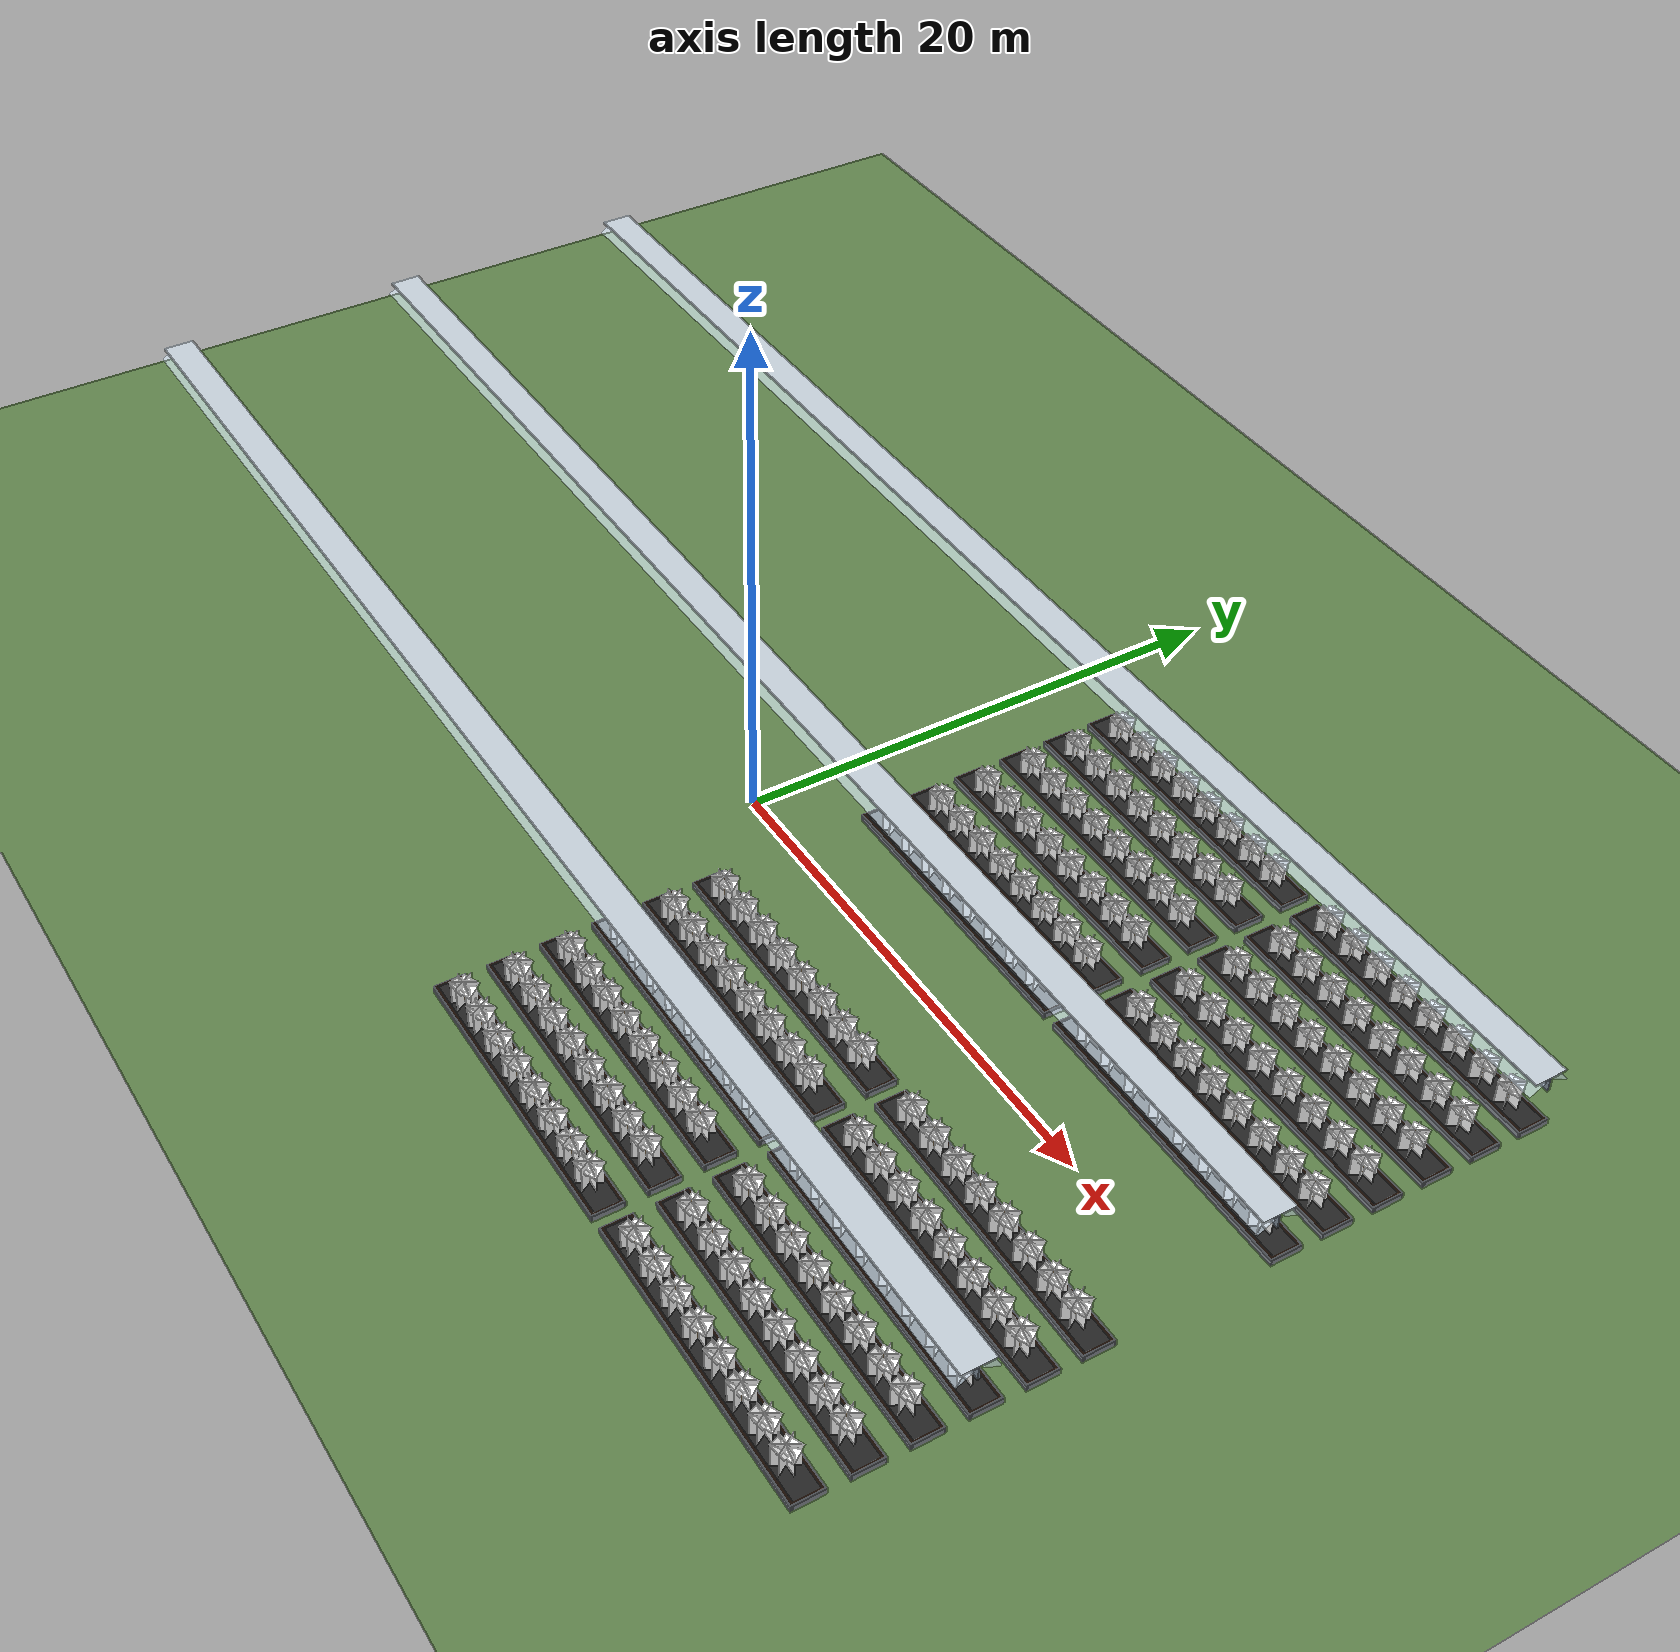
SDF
<sdf version="1.9">
 <world name="polyhouse_world">
  <model name="ground_plane">
   <static>true</static>
   <link name="ground_link">
    <collision name="ground_collision">
     <geometry><plane><normal>0 0 1</normal><size>150 150</size></plane></geometry>
    </collision>
    <visual name="ground_visual">
     <geometry><plane><normal>0 0 1</normal><size>150 150</size></plane></geometry>
     <material>
      <ambient>0.32 0.45 0.25 1</ambient>
      <diffuse>0.38 0.52 0.3 1</diffuse>
      <roughness>0.9</roughness>
     </material>
    </visual>
    <visual name="polyhouse_floor">
     <pose>0 0 0.005 0 0 0</pose>
     <geometry><box><size>60.2 30.2 0.01</size></box></geometry>
     <material>
      <ambient>0.28 0.22 0.18 1</ambient>
      <diffuse>0.34 0.27 0.22 1</diffuse>
      <roughness>0.95</roughness>
     </material>
    </visual>
    <visual name="main_walkway_longitudinal">
     <pose>0 0 0.015 0 0 0</pose>
     <geometry><box><size>60.0 3.0 0.02</size></box></geometry>
     <material>
      <ambient>0.62 0.64 0.65 1</ambient>
      <diffuse>0.72 0.74 0.75 1</diffuse>
      <roughness>0.7</roughness>
     </material>
    </visual>
    <visual name="main_walkway_transverse">
     <pose>0 0 0.016 0 0 0</pose>
     <geometry><box><size>3.0 30.0 0.02</size></box></geometry>
     <material>
      <ambient>0.62 0.64 0.65 1</ambient>
      <diffuse>0.72 0.74 0.75 1</diffuse>
      <roughness>0.7</roughness>
     </material>
    </visual>
   </link>
  </model>
  <include><uri>model://rooftop_ventilation</uri><name>polyhouse_ventilation_system</name></include>
  <include><uri>model://crop_bed</uri><name>capsicum_bed_001</name><pose>8.5 3.5 0 0 0 0</pose></include>
  <include>
   <uri>model://capsicum_plant</uri>
   <name>capsicum_bed_001_p01</name>
   <pose>4.00 3.5 0.25 0 0 0</pose>
  </include>
  <include>
   <uri>model://capsicum_plant</uri>
   <name>capsicum_bed_001_p02</name>
   <pose>5.30 3.5 0.25 0 0 0</pose>
  </include>
  <include>
   <uri>model://capsicum_plant</uri>
   <name>capsicum_bed_001_p03</name>
   <pose>6.60 3.5 0.25 0 0 0</pose>
  </include>
  <include>
   <uri>model://capsicum_plant</uri>
   <name>capsicum_bed_001_p04</name>
   <pose>7.90 3.5 0.25 0 0 0</pose>
  </include>
  <include>
   <uri>model://capsicum_plant</uri>
   <name>capsicum_bed_001_p05</name>
   <pose>9.20 3.5 0.25 0 0 0</pose>
  </include>
  <include>
   <uri>model://capsicum_plant</uri>
   <name>capsicum_bed_001_p06</name>
   <pose>10.50 3.5 0.25 0 0 0</pose>
  </include>
  <include>
   <uri>model://capsicum_plant</uri>
   <name>capsicum_bed_001_p07</name>
   <pose>11.80 3.5 0.25 0 0 0</pose>
  </include>
  <include>
   <uri>model://capsicum_plant</uri>
   <name>capsicum_bed_001_p08</name>
   <pose>13.00 3.5 0.25 0 0 0</pose>
  </include>
  <include><uri>model://crop_bed</uri><name>capsicum_bed_002</name><pose>20.5 3.5 0 0 0 0</pose></include>
  <include>
   <uri>model://capsicum_plant</uri>
   <name>capsicum_bed_002_p01</name>
   <pose>16.00 3.5 0.25 0 0 0</pose>
  </include>
  <include>
   <uri>model://capsicum_plant</uri>
   <name>capsicum_bed_002_p02</name>
   <pose>17.30 3.5 0.25 0 0 0</pose>
  </include>
  <include>
   <uri>model://capsicum_plant</uri>
   <name>capsicum_bed_002_p03</name>
   <pose>18.60 3.5 0.25 0 0 0</pose>
  </include>
  <include>
   <uri>model://capsicum_plant</uri>
   <name>capsicum_bed_002_p04</name>
   <pose>19.90 3.5 0.25 0 0 0</pose>
  </include>
  <include>
   <uri>model://capsicum_plant</uri>
   <name>capsicum_bed_002_p05</name>
   <pose>21.20 3.5 0.25 0 0 0</pose>
  </include>
  <include>
   <uri>model://capsicum_plant</uri>
   <name>capsicum_bed_002_p06</name>
   <pose>22.50 3.5 0.25 0 0 0</pose>
  </include>
  <include>
   <uri>model://capsicum_plant</uri>
   <name>capsicum_bed_002_p07</name>
   <pose>23.80 3.5 0.25 0 0 0</pose>
  </include>
  <include>
   <uri>model://capsicum_plant</uri>
   <name>capsicum_bed_002_p08</name>
   <pose>25.00 3.5 0.25 0 0 0</pose>
  </include>
  <include><uri>model://crop_bed</uri><name>capsicum_bed_003</name><pose>8.5 5.5 0 0 0 0</pose></include>
  <include>
   <uri>model://capsicum_plant</uri>
   <name>capsicum_bed_003_p01</name>
   <pose>4.00 5.5 0.25 0 0 0</pose>
  </include>
  <include>
   <uri>model://capsicum_plant</uri>
   <name>capsicum_bed_003_p02</name>
   <pose>5.30 5.5 0.25 0 0 0</pose>
  </include>
  <include>
   <uri>model://capsicum_plant</uri>
   <name>capsicum_bed_003_p03</name>
   <pose>6.60 5.5 0.25 0 0 0</pose>
  </include>
  <include>
   <uri>model://capsicum_plant</uri>
   <name>capsicum_bed_003_p04</name>
   <pose>7.90 5.5 0.25 0 0 0</pose>
  </include>
  <include>
   <uri>model://capsicum_plant</uri>
   <name>capsicum_bed_003_p05</name>
   <pose>9.20 5.5 0.25 0 0 0</pose>
  </include>
  <include>
   <uri>model://capsicum_plant</uri>
   <name>capsicum_bed_003_p06</name>
   <pose>10.50 5.5 0.25 0 0 0</pose>
  </include>
  <include>
   <uri>model://capsicum_plant</uri>
   <name>capsicum_bed_003_p07</name>
   <pose>11.80 5.5 0.25 0 0 0</pose>
  </include>
  <include>
   <uri>model://capsicum_plant</uri>
   <name>capsicum_bed_003_p08</name>
   <pose>13.00 5.5 0.25 0 0 0</pose>
  </include>
  <include><uri>model://crop_bed</uri><name>capsicum_bed_004</name><pose>20.5 5.5 0 0 0 0</pose></include>
  <include>
   <uri>model://capsicum_plant</uri>
   <name>capsicum_bed_004_p01</name>
   <pose>16.00 5.5 0.25 0 0 0</pose>
  </include>
  <include>
   <uri>model://capsicum_plant</uri>
   <name>capsicum_bed_004_p02</name>
   <pose>17.30 5.5 0.25 0 0 0</pose>
  </include>
  <include>
   <uri>model://capsicum_plant</uri>
   <name>capsicum_bed_004_p03</name>
   <pose>18.60 5.5 0.25 0 0 0</pose>
  </include>
  <include>
   <uri>model://capsicum_plant</uri>
   <name>capsicum_bed_004_p04</name>
   <pose>19.90 5.5 0.25 0 0 0</pose>
  </include>
  <include>
   <uri>model://capsicum_plant</uri>
   <name>capsicum_bed_004_p05</name>
   <pose>21.20 5.5 0.25 0 0 0</pose>
  </include>
  <include>
   <uri>model://capsicum_plant</uri>
   <name>capsicum_bed_004_p06</name>
   <pose>22.50 5.5 0.25 0 0 0</pose>
  </include>
  <include>
   <uri>model://capsicum_plant</uri>
   <name>capsicum_bed_004_p07</name>
   <pose>23.80 5.5 0.25 0 0 0</pose>
  </include>
  <include>
   <uri>model://capsicum_plant</uri>
   <name>capsicum_bed_004_p08</name>
   <pose>25.00 5.5 0.25 0 0 0</pose>
  </include>
  <include><uri>model://crop_bed</uri><name>capsicum_bed_005</name><pose>8.5 7.5 0 0 0 0</pose></include>
  <include>
   <uri>model://capsicum_plant</uri>
   <name>capsicum_bed_005_p01</name>
   <pose>4.00 7.5 0.25 0 0 0</pose>
  </include>
  <include>
   <uri>model://capsicum_plant</uri>
   <name>capsicum_bed_005_p02</name>
   <pose>5.30 7.5 0.25 0 0 0</pose>
  </include>
  <include>
   <uri>model://capsicum_plant</uri>
   <name>capsicum_bed_005_p03</name>
   <pose>6.60 7.5 0.25 0 0 0</pose>
  </include>
  <include>
   <uri>model://capsicum_plant</uri>
   <name>capsicum_bed_005_p04</name>
   <pose>7.90 7.5 0.25 0 0 0</pose>
  </include>
  <include>
   <uri>model://capsicum_plant</uri>
   <name>capsicum_bed_005_p05</name>
   <pose>9.20 7.5 0.25 0 0 0</pose>
  </include>
  <include>
   <uri>model://capsicum_plant</uri>
   <name>capsicum_bed_005_p06</name>
   <pose>10.50 7.5 0.25 0 0 0</pose>
  </include>
  <include>
   <uri>model://capsicum_plant</uri>
   <name>capsicum_bed_005_p07</name>
   <pose>11.80 7.5 0.25 0 0 0</pose>
  </include>
  <include>
   <uri>model://capsicum_plant</uri>
   <name>capsicum_bed_005_p08</name>
   <pose>13.00 7.5 0.25 0 0 0</pose>
  </include>
  <include><uri>model://crop_bed</uri><name>capsicum_bed_006</name><pose>20.5 7.5 0 0 0 0</pose></include>
  <include>
   <uri>model://capsicum_plant</uri>
   <name>capsicum_bed_006_p01</name>
   <pose>16.00 7.5 0.25 0 0 0</pose>
  </include>
  <include>
   <uri>model://capsicum_plant</uri>
   <name>capsicum_bed_006_p02</name>
   <pose>17.30 7.5 0.25 0 0 0</pose>
  </include>
  <include>
   <uri>model://capsicum_plant</uri>
   <name>capsicum_bed_006_p03</name>
   <pose>18.60 7.5 0.25 0 0 0</pose>
  </include>
  <include>
   <uri>model://capsicum_plant</uri>
   <name>capsicum_bed_006_p04</name>
   <pose>19.90 7.5 0.25 0 0 0</pose>
  </include>
  <include>
   <uri>model://capsicum_plant</uri>
   <name>capsicum_bed_006_p05</name>
   <pose>21.20 7.5 0.25 0 0 0</pose>
  </include>
  <include>
   <uri>model://capsicum_plant</uri>
   <name>capsicum_bed_006_p06</name>
   <pose>22.50 7.5 0.25 0 0 0</pose>
  </include>
  <include>
   <uri>model://capsicum_plant</uri>
   <name>capsicum_bed_006_p07</name>
   <pose>23.80 7.5 0.25 0 0 0</pose>
  </include>
  <include>
   <uri>model://capsicum_plant</uri>
   <name>capsicum_bed_006_p08</name>
   <pose>25.00 7.5 0.25 0 0 0</pose>
  </include>
  <include><uri>model://crop_bed</uri><name>capsicum_bed_007</name><pose>8.5 9.5 0 0 0 0</pose></include>
  <include>
   <uri>model://capsicum_plant</uri>
   <name>capsicum_bed_007_p01</name>
   <pose>4.00 9.5 0.25 0 0 0</pose>
  </include>
  <include>
   <uri>model://capsicum_plant</uri>
   <name>capsicum_bed_007_p02</name>
   <pose>5.30 9.5 0.25 0 0 0</pose>
  </include>
  <include>
   <uri>model://capsicum_plant</uri>
   <name>capsicum_bed_007_p03</name>
   <pose>6.60 9.5 0.25 0 0 0</pose>
  </include>
  <include>
   <uri>model://capsicum_plant</uri>
   <name>capsicum_bed_007_p04</name>
   <pose>7.90 9.5 0.25 0 0 0</pose>
  </include>
  <include>
   <uri>model://capsicum_plant</uri>
   <name>capsicum_bed_007_p05</name>
   <pose>9.20 9.5 0.25 0 0 0</pose>
  </include>
  <include>
   <uri>model://capsicum_plant</uri>
   <name>capsicum_bed_007_p06</name>
   <pose>10.50 9.5 0.25 0 0 0</pose>
  </include>
  <include>
   <uri>model://capsicum_plant</uri>
   <name>capsicum_bed_007_p07</name>
   <pose>11.80 9.5 0.25 0 0 0</pose>
  </include>
  <include>
   <uri>model://capsicum_plant</uri>
   <name>capsicum_bed_007_p08</name>
   <pose>13.00 9.5 0.25 0 0 0</pose>
  </include>
  <include><uri>model://crop_bed</uri><name>capsicum_bed_008</name><pose>20.5 9.5 0 0 0 0</pose></include>
  <include>
   <uri>model://capsicum_plant</uri>
   <name>capsicum_bed_008_p01</name>
   <pose>16.00 9.5 0.25 0 0 0</pose>
  </include>
  <include>
   <uri>model://capsicum_plant</uri>
   <name>capsicum_bed_008_p02</name>
   <pose>17.30 9.5 0.25 0 0 0</pose>
  </include>
  <include>
   <uri>model://capsicum_plant</uri>
   <name>capsicum_bed_008_p03</name>
   <pose>18.60 9.5 0.25 0 0 0</pose>
  </include>
  <include>
   <uri>model://capsicum_plant</uri>
   <name>capsicum_bed_008_p04</name>
   <pose>19.90 9.5 0.25 0 0 0</pose>
  </include>
  <include>
   <uri>model://capsicum_plant</uri>
   <name>capsicum_bed_008_p05</name>
   <pose>21.20 9.5 0.25 0 0 0</pose>
  </include>
  <include>
   <uri>model://capsicum_plant</uri>
   <name>capsicum_bed_008_p06</name>
   <pose>22.50 9.5 0.25 0 0 0</pose>
  </include>
  <include>
   <uri>model://capsicum_plant</uri>
   <name>capsicum_bed_008_p07</name>
   <pose>23.80 9.5 0.25 0 0 0</pose>
  </include>
  <include>
   <uri>model://capsicum_plant</uri>
   <name>capsicum_bed_008_p08</name>
   <pose>25.00 9.5 0.25 0 0 0</pose>
  </include>
  <include><uri>model://crop_bed</uri><name>capsicum_bed_009</name><pose>8.5 11.5 0 0 0 0</pose></include>
  <include>
   <uri>model://capsicum_plant</uri>
   <name>capsicum_bed_009_p01</name>
   <pose>4.00 11.5 0.25 0 0 0</pose>
  </include>
  <include>
   <uri>model://capsicum_plant</uri>
   <name>capsicum_bed_009_p02</name>
   <pose>5.30 11.5 0.25 0 0 0</pose>
  </include>
  <include>
   <uri>model://capsicum_plant</uri>
   <name>capsicum_bed_009_p03</name>
   <pose>6.60 11.5 0.25 0 0 0</pose>
  </include>
  <include>
   <uri>model://capsicum_plant</uri>
   <name>capsicum_bed_009_p04</name>
   <pose>7.90 11.5 0.25 0 0 0</pose>
  </include>
  <include>
   <uri>model://capsicum_plant</uri>
   <name>capsicum_bed_009_p05</name>
   <pose>9.20 11.5 0.25 0 0 0</pose>
  </include>
  <include>
   <uri>model://capsicum_plant</uri>
   <name>capsicum_bed_009_p06</name>
   <pose>10.50 11.5 0.25 0 0 0</pose>
  </include>
  <include>
   <uri>model://capsicum_plant</uri>
   <name>capsicum_bed_009_p07</name>
   <pose>11.80 11.5 0.25 0 0 0</pose>
  </include>
  <include>
   <uri>model://capsicum_plant</uri>
   <name>capsicum_bed_009_p08</name>
   <pose>13.00 11.5 0.25 0 0 0</pose>
  </include>
  <include><uri>model://crop_bed</uri><name>capsicum_bed_010</name><pose>20.5 11.5 0 0 0 0</pose></include>
  <include>
   <uri>model://capsicum_plant</uri>
   <name>capsicum_bed_010_p01</name>
   <pose>16.00 11.5 0.25 0 0 0</pose>
  </include>
  <include>
   <uri>model://capsicum_plant</uri>
   <name>capsicum_bed_010_p02</name>
   <pose>17.30 11.5 0.25 0 0 0</pose>
  </include>
  <include>
   <uri>model://capsicum_plant</uri>
   <name>capsicum_bed_010_p03</name>
   <pose>18.60 11.5 0.25 0 0 0</pose>
  </include>
  <include>
   <uri>model://capsicum_plant</uri>
   <name>capsicum_bed_010_p04</name>
   <pose>19.90 11.5 0.25 0 0 0</pose>
  </include>
  <include>
   <uri>model://capsicum_plant</uri>
   <name>capsicum_bed_010_p05</name>
   <pose>21.20 11.5 0.25 0 0 0</pose>
  </include>
  <include>
   <uri>model://capsicum_plant</uri>
   <name>capsicum_bed_010_p06</name>
   <pose>22.50 11.5 0.25 0 0 0</pose>
  </include>
  <include>
   <uri>model://capsicum_plant</uri>
   <name>capsicum_bed_010_p07</name>
   <pose>23.80 11.5 0.25 0 0 0</pose>
  </include>
  <include>
   <uri>model://capsicum_plant</uri>
   <name>capsicum_bed_010_p08</name>
   <pose>25.00 11.5 0.25 0 0 0</pose>
  </include>
  <include><uri>model://crop_bed</uri><name>capsicum_bed_011</name><pose>8.5 13.5 0 0 0 0</pose></include>
  <include>
   <uri>model://capsicum_plant</uri>
   <name>capsicum_bed_011_p01</name>
   <pose>4.00 13.5 0.25 0 0 0</pose>
  </include>
  <include>
   <uri>model://capsicum_plant</uri>
   <name>capsicum_bed_011_p02</name>
   <pose>5.30 13.5 0.25 0 0 0</pose>
  </include>
  <include>
   <uri>model://capsicum_plant</uri>
   <name>capsicum_bed_011_p03</name>
   <pose>6.60 13.5 0.25 0 0 0</pose>
  </include>
  <include>
   <uri>model://capsicum_plant</uri>
   <name>capsicum_bed_011_p04</name>
   <pose>7.90 13.5 0.25 0 0 0</pose>
  </include>
  <include>
   <uri>model://capsicum_plant</uri>
   <name>capsicum_bed_011_p05</name>
   <pose>9.20 13.5 0.25 0 0 0</pose>
  </include>
  <include>
   <uri>model://capsicum_plant</uri>
   <name>capsicum_bed_011_p06</name>
   <pose>10.50 13.5 0.25 0 0 0</pose>
  </include>
  <include>
   <uri>model://capsicum_plant</uri>
   <name>capsicum_bed_011_p07</name>
   <pose>11.80 13.5 0.25 0 0 0</pose>
  </include>
  <include>
   <uri>model://capsicum_plant</uri>
   <name>capsicum_bed_011_p08</name>
   <pose>13.00 13.5 0.25 0 0 0</pose>
  </include>
  <include><uri>model://crop_bed</uri><name>capsicum_bed_012</name><pose>20.5 13.5 0 0 0 0</pose></include>
  <include>
   <uri>model://capsicum_plant</uri>
   <name>capsicum_bed_012_p01</name>
   <pose>16.00 13.5 0.25 0 0 0</pose>
  </include>
  <include>
   <uri>model://capsicum_plant</uri>
   <name>capsicum_bed_012_p02</name>
   <pose>17.30 13.5 0.25 0 0 0</pose>
  </include>
  <include>
   <uri>model://capsicum_plant</uri>
   <name>capsicum_bed_012_p03</name>
   <pose>18.60 13.5 0.25 0 0 0</pose>
  </include>
  <include>
   <uri>model://capsicum_plant</uri>
   <name>capsicum_bed_012_p04</name>
   <pose>19.90 13.5 0.25 0 0 0</pose>
  </include>
  <include>
   <uri>model://capsicum_plant</uri>
   <name>capsicum_bed_012_p05</name>
   <pose>21.20 13.5 0.25 0 0 0</pose>
  </include>
  <include>
   <uri>model://capsicum_plant</uri>
   <name>capsicum_bed_012_p06</name>
   <pose>22.50 13.5 0.25 0 0 0</pose>
  </include>
  <include>
   <uri>model://capsicum_plant</uri>
   <name>capsicum_bed_012_p07</name>
   <pose>23.80 13.5 0.25 0 0 0</pose>
  </include>
  <include>
   <uri>model://capsicum_plant</uri>
   <name>capsicum_bed_012_p08</name>
   <pose>25.00 13.5 0.25 0 0 0</pose>
  </include>
  <include><uri>model://crop_bed</uri><name>eggplant_bed_001</name><pose>8.5 -13.5 0 0 0 0</pose></include>
  <include>
   <uri>model://eggplant_plant</uri>
   <name>eggplant_bed_001_p01</name>
   <pose>4.00 -13.5 0.25 0 0 0</pose>
  </include>
  <include>
   <uri>model://eggplant_plant</uri>
   <name>eggplant_bed_001_p02</name>
   <pose>5.30 -13.5 0.25 0 0 0</pose>
  </include>
  <include>
   <uri>model://eggplant_plant</uri>
   <name>eggplant_bed_001_p03</name>
   <pose>6.60 -13.5 0.25 0 0 0</pose>
  </include>
  <include>
   <uri>model://eggplant_plant</uri>
   <name>eggplant_bed_001_p04</name>
   <pose>7.90 -13.5 0.25 0 0 0</pose>
  </include>
  <include>
   <uri>model://eggplant_plant</uri>
   <name>eggplant_bed_001_p05</name>
   <pose>9.20 -13.5 0.25 0 0 0</pose>
  </include>
  <include>
   <uri>model://eggplant_plant</uri>
   <name>eggplant_bed_001_p06</name>
   <pose>10.50 -13.5 0.25 0 0 0</pose>
  </include>
  <include>
   <uri>model://eggplant_plant</uri>
   <name>eggplant_bed_001_p07</name>
   <pose>11.80 -13.5 0.25 0 0 0</pose>
  </include>
  <include>
   <uri>model://eggplant_plant</uri>
   <name>eggplant_bed_001_p08</name>
   <pose>13.00 -13.5 0.25 0 0 0</pose>
  </include>
  <include><uri>model://crop_bed</uri><name>eggplant_bed_002</name><pose>20.5 -13.5 0 0 0 0</pose></include>
  <include>
   <uri>model://eggplant_plant</uri>
   <name>eggplant_bed_002_p01</name>
   <pose>16.00 -13.5 0.25 0 0 0</pose>
  </include>
  <include>
   <uri>model://eggplant_plant</uri>
   <name>eggplant_bed_002_p02</name>
   <pose>17.30 -13.5 0.25 0 0 0</pose>
  </include>
  <include>
   <uri>model://eggplant_plant</uri>
   <name>eggplant_bed_002_p03</name>
   <pose>18.60 -13.5 0.25 0 0 0</pose>
  </include>
  <include>
   <uri>model://eggplant_plant</uri>
   <name>eggplant_bed_002_p04</name>
   <pose>19.90 -13.5 0.25 0 0 0</pose>
  </include>
  <include>
   <uri>model://eggplant_plant</uri>
   <name>eggplant_bed_002_p05</name>
   <pose>21.20 -13.5 0.25 0 0 0</pose>
  </include>
  <include>
   <uri>model://eggplant_plant</uri>
   <name>eggplant_bed_002_p06</name>
   <pose>22.50 -13.5 0.25 0 0 0</pose>
  </include>
  <include>
   <uri>model://eggplant_plant</uri>
   <name>eggplant_bed_002_p07</name>
   <pose>23.80 -13.5 0.25 0 0 0</pose>
  </include>
  <include>
   <uri>model://eggplant_plant</uri>
   <name>eggplant_bed_002_p08</name>
   <pose>25.00 -13.5 0.25 0 0 0</pose>
  </include>
  <include><uri>model://crop_bed</uri><name>eggplant_bed_003</name><pose>8.5 -11.5 0 0 0 0</pose></include>
  <include>
   <uri>model://eggplant_plant</uri>
   <name>eggplant_bed_003_p01</name>
   <pose>4.00 -11.5 0.25 0 0 0</pose>
  </include>
  <include>
   <uri>model://eggplant_plant</uri>
   <name>eggplant_bed_003_p02</name>
   <pose>5.30 -11.5 0.25 0 0 0</pose>
  </include>
  <include>
   <uri>model://eggplant_plant</uri>
   <name>eggplant_bed_003_p03</name>
   <pose>6.60 -11.5 0.25 0 0 0</pose>
  </include>
  <include>
   <uri>model://eggplant_plant</uri>
   <name>eggplant_bed_003_p04</name>
   <pose>7.90 -11.5 0.25 0 0 0</pose>
  </include>
  <include>
   <uri>model://eggplant_plant</uri>
   <name>eggplant_bed_003_p05</name>
   <pose>9.20 -11.5 0.25 0 0 0</pose>
  </include>
  <include>
   <uri>model://eggplant_plant</uri>
   <name>eggplant_bed_003_p06</name>
   <pose>10.50 -11.5 0.25 0 0 0</pose>
  </include>
  <include>
   <uri>model://eggplant_plant</uri>
   <name>eggplant_bed_003_p07</name>
   <pose>11.80 -11.5 0.25 0 0 0</pose>
  </include>
  <include>
   <uri>model://eggplant_plant</uri>
   <name>eggplant_bed_003_p08</name>
   <pose>13.00 -11.5 0.25 0 0 0</pose>
  </include>
  <include><uri>model://crop_bed</uri><name>eggplant_bed_004</name><pose>20.5 -11.5 0 0 0 0</pose></include>
  <include>
   <uri>model://eggplant_plant</uri>
   <name>eggplant_bed_004_p01</name>
   <pose>16.00 -11.5 0.25 0 0 0</pose>
  </include>
  <include>
   <uri>model://eggplant_plant</uri>
   <name>eggplant_bed_004_p02</name>
   <pose>17.30 -11.5 0.25 0 0 0</pose>
  </include>
  <include>
   <uri>model://eggplant_plant</uri>
   <name>eggplant_bed_004_p03</name>
   <pose>18.60 -11.5 0.25 0 0 0</pose>
  </include>
  <include>
   <uri>model://eggplant_plant</uri>
   <name>eggplant_bed_004_p04</name>
   <pose>19.90 -11.5 0.25 0 0 0</pose>
  </include>
  <include>
   <uri>model://eggplant_plant</uri>
   <name>eggplant_bed_004_p05</name>
   <pose>21.20 -11.5 0.25 0 0 0</pose>
  </include>
  <include>
   <uri>model://eggplant_plant</uri>
   <name>eggplant_bed_004_p06</name>
   <pose>22.50 -11.5 0.25 0 0 0</pose>
  </include>
  <include>
   <uri>model://eggplant_plant</uri>
   <name>eggplant_bed_004_p07</name>
   <pose>23.80 -11.5 0.25 0 0 0</pose>
  </include>
  <include>
   <uri>model://eggplant_plant</uri>
   <name>eggplant_bed_004_p08</name>
   <pose>25.00 -11.5 0.25 0 0 0</pose>
  </include>
  <include><uri>model://crop_bed</uri><name>eggplant_bed_005</name><pose>8.5 -9.5 0 0 0 0</pose></include>
  <include>
   <uri>model://eggplant_plant</uri>
   <name>eggplant_bed_005_p01</name>
   <pose>4.00 -9.5 0.25 0 0 0</pose>
  </include>
  <include>
   <uri>model://eggplant_plant</uri>
   <name>eggplant_bed_005_p02</name>
   <pose>5.30 -9.5 0.25 0 0 0</pose>
  </include>
  <include>
   <uri>model://eggplant_plant</uri>
   <name>eggplant_bed_005_p03</name>
   <pose>6.60 -9.5 0.25 0 0 0</pose>
  </include>
  <include>
   <uri>model://eggplant_plant</uri>
   <name>eggplant_bed_005_p04</name>
   <pose>7.90 -9.5 0.25 0 0 0</pose>
  </include>
  <include>
   <uri>model://eggplant_plant</uri>
   <name>eggplant_bed_005_p05</name>
   <pose>9.20 -9.5 0.25 0 0 0</pose>
  </include>
  <include>
   <uri>model://eggplant_plant</uri>
   <name>eggplant_bed_005_p06</name>
   <pose>10.50 -9.5 0.25 0 0 0</pose>
  </include>
  <include>
   <uri>model://eggplant_plant</uri>
   <name>eggplant_bed_005_p07</name>
   <pose>11.80 -9.5 0.25 0 0 0</pose>
  </include>
  <include>
   <uri>model://eggplant_plant</uri>
   <name>eggplant_bed_005_p08</name>
   <pose>13.00 -9.5 0.25 0 0 0</pose>
  </include>
  <include><uri>model://crop_bed</uri><name>eggplant_bed_006</name><pose>20.5 -9.5 0 0 0 0</pose></include>
  <include>
   <uri>model://eggplant_plant</uri>
   <name>eggplant_bed_006_p01</name>
   <pose>16.00 -9.5 0.25 0 0 0</pose>
  </include>
  <include>
   <uri>model://eggplant_plant</uri>
   <name>eggplant_bed_006_p02</name>
   <pose>17.30 -9.5 0.25 0 0 0</pose>
  </include>
  <include>
   <uri>model://eggplant_plant</uri>
   <name>eggplant_bed_006_p03</name>
   <pose>18.60 -9.5 0.25 0 0 0</pose>
  </include>
  <include>
   <uri>model://eggplant_plant</uri>
   <name>eggplant_bed_006_p04</name>
   <pose>19.90 -9.5 0.25 0 0 0</pose>
  </include>
  <include>
   <uri>model://eggplant_plant</uri>
   <name>eggplant_bed_006_p05</name>
   <pose>21.20 -9.5 0.25 0 0 0</pose>
  </include>
  <include>
   <uri>model://eggplant_plant</uri>
   <name>eggplant_bed_006_p06</name>
   <pose>22.50 -9.5 0.25 0 0 0</pose>
  </include>
  <include>
   <uri>model://eggplant_plant</uri>
   <name>eggplant_bed_006_p07</name>
   <pose>23.80 -9.5 0.25 0 0 0</pose>
  </include>
  <include>
   <uri>model://eggplant_plant</uri>
   <name>eggplant_bed_006_p08</name>
   <pose>25.00 -9.5 0.25 0 0 0</pose>
  </include>
  <include><uri>model://crop_bed</uri><name>eggplant_bed_007</name><pose>8.5 -7.5 0 0 0 0</pose></include>
  <include>
   <uri>model://eggplant_plant</uri>
   <name>eggplant_bed_007_p01</name>
   <pose>4.00 -7.5 0.25 0 0 0</pose>
  </include>
  <include>
   <uri>model://eggplant_plant</uri>
   <name>eggplant_bed_007_p02</name>
   <pose>5.30 -7.5 0.25 0 0 0</pose>
  </include>
  <include>
   <uri>model://eggplant_plant</uri>
   <name>eggplant_bed_007_p03</name>
   <pose>6.60 -7.5 0.25 0 0 0</pose>
  </include>
  <include>
   <uri>model://eggplant_plant</uri>
   <name>eggplant_bed_007_p04</name>
   <pose>7.90 -7.5 0.25 0 0 0</pose>
  </include>
  <include>
   <uri>model://eggplant_plant</uri>
   <name>eggplant_bed_007_p05</name>
   <pose>9.20 -7.5 0.25 0 0 0</pose>
  </include>
  <include>
   <uri>model://eggplant_plant</uri>
   <name>eggplant_bed_007_p06</name>
   <pose>10.50 -7.5 0.25 0 0 0</pose>
  </include>
  <include>
   <uri>model://eggplant_plant</uri>
   <name>eggplant_bed_007_p07</name>
   <pose>11.80 -7.5 0.25 0 0 0</pose>
  </include>
  <include>
   <uri>model://eggplant_plant</uri>
   <name>eggplant_bed_007_p08</name>
   <pose>13.00 -7.5 0.25 0 0 0</pose>
  </include>
  <include><uri>model://crop_bed</uri><name>eggplant_bed_008</name><pose>20.5 -7.5 0 0 0 0</pose></include>
  <include>
   <uri>model://eggplant_plant</uri>
   <name>eggplant_bed_008_p01</name>
   <pose>16.00 -7.5 0.25 0 0 0</pose>
  </include>
  <include>
   <uri>model://eggplant_plant</uri>
   <name>eggplant_bed_008_p02</name>
   <pose>17.30 -7.5 0.25 0 0 0</pose>
  </include>
  <include>
   <uri>model://eggplant_plant</uri>
   <name>eggplant_bed_008_p03</name>
   <pose>18.60 -7.5 0.25 0 0 0</pose>
  </include>
  <include>
   <uri>model://eggplant_plant</uri>
   <name>eggplant_bed_008_p04</name>
   <pose>19.90 -7.5 0.25 0 0 0</pose>
  </include>
  <include>
   <uri>model://eggplant_plant</uri>
   <name>eggplant_bed_008_p05</name>
   <pose>21.20 -7.5 0.25 0 0 0</pose>
  </include>
  <include>
   <uri>model://eggplant_plant</uri>
   <name>eggplant_bed_008_p06</name>
   <pose>22.50 -7.5 0.25 0 0 0</pose>
  </include>
  <include>
   <uri>model://eggplant_plant</uri>
   <name>eggplant_bed_008_p07</name>
   <pose>23.80 -7.5 0.25 0 0 0</pose>
  </include>
  <include>
   <uri>model://eggplant_plant</uri>
   <name>eggplant_bed_008_p08</name>
   <pose>25.00 -7.5 0.25 0 0 0</pose>
  </include>
  <include><uri>model://crop_bed</uri><name>eggplant_bed_009</name><pose>8.5 -5.5 0 0 0 0</pose></include>
  <include>
   <uri>model://eggplant_plant</uri>
   <name>eggplant_bed_009_p01</name>
   <pose>4.00 -5.5 0.25 0 0 0</pose>
  </include>
  <include>
   <uri>model://eggplant_plant</uri>
   <name>eggplant_bed_009_p02</name>
   <pose>5.30 -5.5 0.25 0 0 0</pose>
  </include>
  <include>
   <uri>model://eggplant_plant</uri>
   <name>eggplant_bed_009_p03</name>
   <pose>6.60 -5.5 0.25 0 0 0</pose>
  </include>
  <include>
   <uri>model://eggplant_plant</uri>
   <name>eggplant_bed_009_p04</name>
   <pose>7.90 -5.5 0.25 0 0 0</pose>
  </include>
  <include>
   <uri>model://eggplant_plant</uri>
   <name>eggplant_bed_009_p05</name>
   <pose>9.20 -5.5 0.25 0 0 0</pose>
  </include>
  <include>
   <uri>model://eggplant_plant</uri>
   <name>eggplant_bed_009_p06</name>
   <pose>10.50 -5.5 0.25 0 0 0</pose>
  </include>
  <include>
   <uri>model://eggplant_plant</uri>
   <name>eggplant_bed_009_p07</name>
   <pose>11.80 -5.5 0.25 0 0 0</pose>
  </include>
  <include>
   <uri>model://eggplant_plant</uri>
   <name>eggplant_bed_009_p08</name>
   <pose>13.00 -5.5 0.25 0 0 0</pose>
  </include>
  <include><uri>model://crop_bed</uri><name>eggplant_bed_010</name><pose>20.5 -5.5 0 0 0 0</pose></include>
  <include>
   <uri>model://eggplant_plant</uri>
   <name>eggplant_bed_010_p01</name>
   <pose>16.00 -5.5 0.25 0 0 0</pose>
  </include>
  <include>
   <uri>model://eggplant_plant</uri>
   <name>eggplant_bed_010_p02</name>
   <pose>17.30 -5.5 0.25 0 0 0</pose>
  </include>
  <include>
   <uri>model://eggplant_plant</uri>
   <name>eggplant_bed_010_p03</name>
   <pose>18.60 -5.5 0.25 0 0 0</pose>
  </include>
  <include>
   <uri>model://eggplant_plant</uri>
   <name>eggplant_bed_010_p04</name>
   <pose>19.90 -5.5 0.25 0 0 0</pose>
  </include>
  <include>
   <uri>model://eggplant_plant</uri>
   <name>eggplant_bed_010_p05</name>
   <pose>21.20 -5.5 0.25 0 0 0</pose>
  </include>
  <include>
   <uri>model://eggplant_plant</uri>
   <name>eggplant_bed_010_p06</name>
   <pose>22.50 -5.5 0.25 0 0 0</pose>
  </include>
  <include>
   <uri>model://eggplant_plant</uri>
   <name>eggplant_bed_010_p07</name>
   <pose>23.80 -5.5 0.25 0 0 0</pose>
  </include>
  <include>
   <uri>model://eggplant_plant</uri>
   <name>eggplant_bed_010_p08</name>
   <pose>25.00 -5.5 0.25 0 0 0</pose>
  </include>
  <include><uri>model://crop_bed</uri><name>eggplant_bed_011</name><pose>8.5 -3.5 0 0 0 0</pose></include>
  <include>
   <uri>model://eggplant_plant</uri>
   <name>eggplant_bed_011_p01</name>
   <pose>4.00 -3.5 0.25 0 0 0</pose>
  </include>
  <include>
   <uri>model://eggplant_plant</uri>
   <name>eggplant_bed_011_p02</name>
   <pose>5.30 -3.5 0.25 0 0 0</pose>
  </include>
  <include>
   <uri>model://eggplant_plant</uri>
   <name>eggplant_bed_011_p03</name>
   <pose>6.60 -3.5 0.25 0 0 0</pose>
  </include>
  <include>
   <uri>model://eggplant_plant</uri>
   <name>eggplant_bed_011_p04</name>
   <pose>7.90 -3.5 0.25 0 0 0</pose>
  </include>
  <include>
   <uri>model://eggplant_plant</uri>
   <name>eggplant_bed_011_p05</name>
   <pose>9.20 -3.5 0.25 0 0 0</pose>
  </include>
  <include>
   <uri>model://eggplant_plant</uri>
   <name>eggplant_bed_011_p06</name>
   <pose>10.50 -3.5 0.25 0 0 0</pose>
  </include>
  <include>
   <uri>model://eggplant_plant</uri>
   <name>eggplant_bed_011_p07</name>
   <pose>11.80 -3.5 0.25 0 0 0</pose>
  </include>
  <include>
   <uri>model://eggplant_plant</uri>
   <name>eggplant_bed_011_p08</name>
   <pose>13.00 -3.5 0.25 0 0 0</pose>
  </include>
  <include><uri>model://crop_bed</uri><name>eggplant_bed_012</name><pose>20.5 -3.5 0 0 0 0</pose></include>
  <include>
   <uri>model://eggplant_plant</uri>
   <name>eggplant_bed_012_p01</name>
   <pose>16.00 -3.5 0.25 0 0 0</pose>
  </include>
  <include>
   <uri>model://eggplant_plant</uri>
   <name>eggplant_bed_012_p02</name>
   <pose>17.30 -3.5 0.25 0 0 0</pose>
  </include>
  <include>
   <uri>model://eggplant_plant</uri>
   <name>eggplant_bed_012_p03</name>
   <pose>18.60 -3.5 0.25 0 0 0</pose>
  </include>
  <include>
   <uri>model://eggplant_plant</uri>
   <name>eggplant_bed_012_p04</name>
   <pose>19.90 -3.5 0.25 0 0 0</pose>
  </include>
  <include>
   <uri>model://eggplant_plant</uri>
   <name>eggplant_bed_012_p05</name>
   <pose>21.20 -3.5 0.25 0 0 0</pose>
  </include>
  <include>
   <uri>model://eggplant_plant</uri>
   <name>eggplant_bed_012_p06</name>
   <pose>22.50 -3.5 0.25 0 0 0</pose>
  </include>
  <include>
   <uri>model://eggplant_plant</uri>
   <name>eggplant_bed_012_p07</name>
   <pose>23.80 -3.5 0.25 0 0 0</pose>
  </include>
  <include>
   <uri>model://eggplant_plant</uri>
   <name>eggplant_bed_012_p08</name>
   <pose>25.00 -3.5 0.25 0 0 0</pose>
  </include>
 </world>
</sdf>
